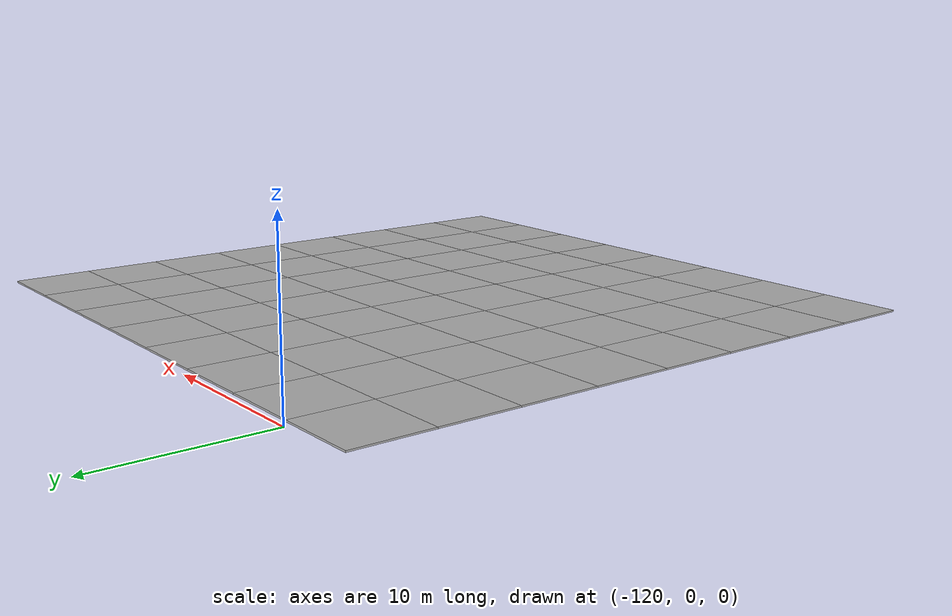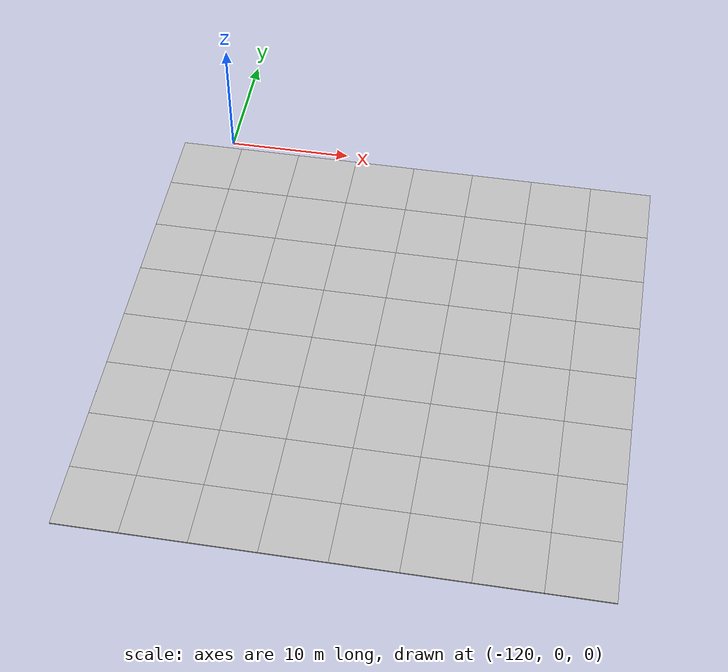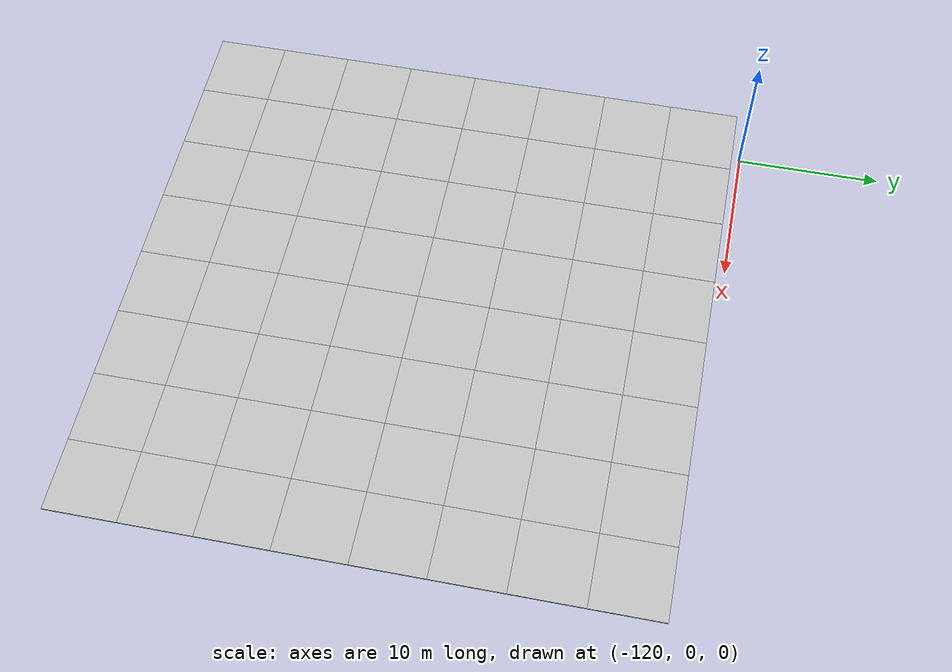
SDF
<sdf version="1.7">
 <world name="default">
  <model name="mud_plane_80x80_4">
   <model name="mud_plane_40x40">
    <model name="mud_plane_20x20">
     <model name="mud_plane">
      <static>1</static>
      <link name="link">
       <collision name="collision"><geometry><box><size>10 10 0.1</size></box></geometry></collision>
       <visual name="visual_1">
        <pose>-2.5 2.5 -0.05 0 -0 0</pose>
        <cast_shadows>0</cast_shadows>
        <geometry><box><size>5 5 0.1</size></box></geometry>
        <material>
         <script>
          <uri>model://mud_plane/materials/scripts</uri>
          <uri>model://mud_plane/materials/textures</uri>
          <name>vrc/mud</name>
         </script>
        </material>
       </visual>
       <visual name="visual_2">
        <pose>2.5 2.5 -0.05 0 -0 0</pose>
        <cast_shadows>0</cast_shadows>
        <geometry><box><size>5 5 0.1</size></box></geometry>
        <material>
         <script>
          <uri>model://mud_plane/materials/scripts</uri>
          <uri>model://mud_plane/materials/textures</uri>
          <name>vrc/mud</name>
         </script>
        </material>
       </visual>
       <visual name="visual_3">
        <pose>2.5 -2.5 -0.05 0 -0 0</pose>
        <cast_shadows>0</cast_shadows>
        <geometry><box><size>5 5 0.1</size></box></geometry>
        <material>
         <script>
          <uri>model://mud_plane/materials/scripts</uri>
          <uri>model://mud_plane/materials/textures</uri>
          <name>vrc/mud</name>
         </script>
        </material>
       </visual>
       <visual name="visual_4">
        <pose>-2.5 -2.5 -0.05 0 -0 0</pose>
        <cast_shadows>0</cast_shadows>
        <geometry><box><size>5 5 0.1</size></box></geometry>
        <material>
         <script>
          <uri>model://mud_plane/materials/scripts</uri>
          <uri>model://mud_plane/materials/textures</uri>
          <name>vrc/mud</name>
         </script>
        </material>
       </visual>
      </link>
      <pose>-4.99986 -4.99991 0 0 -0 0</pose>
     </model>
     <model name="mud_plane_0">
      <static>1</static>
      <link name="link">
       <collision name="collision"><geometry><box><size>10 10 0.1</size></box></geometry></collision>
       <visual name="visual_1">
        <pose>-2.5 2.5 -0.05 0 -0 0</pose>
        <cast_shadows>0</cast_shadows>
        <geometry><box><size>5 5 0.1</size></box></geometry>
        <material>
         <script>
          <uri>model://mud_plane/materials/scripts</uri>
          <uri>model://mud_plane/materials/textures</uri>
          <name>vrc/mud</name>
         </script>
        </material>
       </visual>
       <visual name="visual_2">
        <pose>2.5 2.5 -0.05 0 -0 0</pose>
        <cast_shadows>0</cast_shadows>
        <geometry><box><size>5 5 0.1</size></box></geometry>
        <material>
         <script>
          <uri>model://mud_plane/materials/scripts</uri>
          <uri>model://mud_plane/materials/textures</uri>
          <name>vrc/mud</name>
         </script>
        </material>
       </visual>
       <visual name="visual_3">
        <pose>2.5 -2.5 -0.05 0 -0 0</pose>
        <cast_shadows>0</cast_shadows>
        <geometry><box><size>5 5 0.1</size></box></geometry>
        <material>
         <script>
          <uri>model://mud_plane/materials/scripts</uri>
          <uri>model://mud_plane/materials/textures</uri>
          <name>vrc/mud</name>
         </script>
        </material>
       </visual>
       <visual name="visual_4">
        <pose>-2.5 -2.5 -0.05 0 -0 0</pose>
        <cast_shadows>0</cast_shadows>
        <geometry><box><size>5 5 0.1</size></box></geometry>
        <material>
         <script>
          <uri>model://mud_plane/materials/scripts</uri>
          <uri>model://mud_plane/materials/textures</uri>
          <name>vrc/mud</name>
         </script>
        </material>
       </visual>
      </link>
      <pose>-4.99946 4.99954 0 0 -0 0</pose>
     </model>
     <model name="mud_plane_1">
      <static>1</static>
      <link name="link">
       <collision name="collision"><geometry><box><size>10 10 0.1</size></box></geometry></collision>
       <visual name="visual_1">
        <pose>-2.5 2.5 -0.05 0 -0 0</pose>
        <cast_shadows>0</cast_shadows>
        <geometry><box><size>5 5 0.1</size></box></geometry>
        <material>
         <script>
          <uri>model://mud_plane/materials/scripts</uri>
          <uri>model://mud_plane/materials/textures</uri>
          <name>vrc/mud</name>
         </script>
        </material>
       </visual>
       <visual name="visual_2">
        <pose>2.5 2.5 -0.05 0 -0 0</pose>
        <cast_shadows>0</cast_shadows>
        <geometry><box><size>5 5 0.1</size></box></geometry>
        <material>
         <script>
          <uri>model://mud_plane/materials/scripts</uri>
          <uri>model://mud_plane/materials/textures</uri>
          <name>vrc/mud</name>
         </script>
        </material>
       </visual>
       <visual name="visual_3">
        <pose>2.5 -2.5 -0.05 0 -0 0</pose>
        <cast_shadows>0</cast_shadows>
        <geometry><box><size>5 5 0.1</size></box></geometry>
        <material>
         <script>
          <uri>model://mud_plane/materials/scripts</uri>
          <uri>model://mud_plane/materials/textures</uri>
          <name>vrc/mud</name>
         </script>
        </material>
       </visual>
       <visual name="visual_4">
        <pose>-2.5 -2.5 -0.05 0 -0 0</pose>
        <cast_shadows>0</cast_shadows>
        <geometry><box><size>5 5 0.1</size></box></geometry>
        <material>
         <script>
          <uri>model://mud_plane/materials/scripts</uri>
          <uri>model://mud_plane/materials/textures</uri>
          <name>vrc/mud</name>
         </script>
        </material>
       </visual>
      </link>
      <pose>4.99964 -4.99949 0 0 -0 0</pose>
     </model>
     <model name="mud_plane_2">
      <static>1</static>
      <link name="link">
       <collision name="collision"><geometry><box><size>10 10 0.1</size></box></geometry></collision>
       <visual name="visual_1">
        <pose>-2.5 2.5 -0.05 0 -0 0</pose>
        <cast_shadows>0</cast_shadows>
        <geometry><box><size>5 5 0.1</size></box></geometry>
        <material>
         <script>
          <uri>model://mud_plane/materials/scripts</uri>
          <uri>model://mud_plane/materials/textures</uri>
          <name>vrc/mud</name>
         </script>
        </material>
       </visual>
       <visual name="visual_2">
        <pose>2.5 2.5 -0.05 0 -0 0</pose>
        <cast_shadows>0</cast_shadows>
        <geometry><box><size>5 5 0.1</size></box></geometry>
        <material>
         <script>
          <uri>model://mud_plane/materials/scripts</uri>
          <uri>model://mud_plane/materials/textures</uri>
          <name>vrc/mud</name>
         </script>
        </material>
       </visual>
       <visual name="visual_3">
        <pose>2.5 -2.5 -0.05 0 -0 0</pose>
        <cast_shadows>0</cast_shadows>
        <geometry><box><size>5 5 0.1</size></box></geometry>
        <material>
         <script>
          <uri>model://mud_plane/materials/scripts</uri>
          <uri>model://mud_plane/materials/textures</uri>
          <name>vrc/mud</name>
         </script>
        </material>
       </visual>
       <visual name="visual_4">
        <pose>-2.5 -2.5 -0.05 0 -0 0</pose>
        <cast_shadows>0</cast_shadows>
        <geometry><box><size>5 5 0.1</size></box></geometry>
        <material>
         <script>
          <uri>model://mud_plane/materials/scripts</uri>
          <uri>model://mud_plane/materials/textures</uri>
          <name>vrc/mud</name>
         </script>
        </material>
       </visual>
      </link>
      <pose>4.99967 4.99986 0 0 -0 0</pose>
     </model>
     <static>0</static>
     <pose>-9.99895 9.99843 0 0 -0 0</pose>
    </model>
    <model name="mud_plane_20x20_0">
     <model name="mud_plane">
      <static>1</static>
      <link name="link">
       <collision name="collision"><geometry><box><size>10 10 0.1</size></box></geometry></collision>
       <visual name="visual_1">
        <pose>-2.5 2.5 -0.05 0 -0 0</pose>
        <cast_shadows>0</cast_shadows>
        <geometry><box><size>5 5 0.1</size></box></geometry>
        <material>
         <script>
          <uri>model://mud_plane/materials/scripts</uri>
          <uri>model://mud_plane/materials/textures</uri>
          <name>vrc/mud</name>
         </script>
        </material>
       </visual>
       <visual name="visual_2">
        <pose>2.5 2.5 -0.05 0 -0 0</pose>
        <cast_shadows>0</cast_shadows>
        <geometry><box><size>5 5 0.1</size></box></geometry>
        <material>
         <script>
          <uri>model://mud_plane/materials/scripts</uri>
          <uri>model://mud_plane/materials/textures</uri>
          <name>vrc/mud</name>
         </script>
        </material>
       </visual>
       <visual name="visual_3">
        <pose>2.5 -2.5 -0.05 0 -0 0</pose>
        <cast_shadows>0</cast_shadows>
        <geometry><box><size>5 5 0.1</size></box></geometry>
        <material>
         <script>
          <uri>model://mud_plane/materials/scripts</uri>
          <uri>model://mud_plane/materials/textures</uri>
          <name>vrc/mud</name>
         </script>
        </material>
       </visual>
       <visual name="visual_4">
        <pose>-2.5 -2.5 -0.05 0 -0 0</pose>
        <cast_shadows>0</cast_shadows>
        <geometry><box><size>5 5 0.1</size></box></geometry>
        <material>
         <script>
          <uri>model://mud_plane/materials/scripts</uri>
          <uri>model://mud_plane/materials/textures</uri>
          <name>vrc/mud</name>
         </script>
        </material>
       </visual>
      </link>
      <pose>-4.99986 -4.99991 0 0 -0 0</pose>
     </model>
     <model name="mud_plane_0">
      <static>1</static>
      <link name="link">
       <collision name="collision"><geometry><box><size>10 10 0.1</size></box></geometry></collision>
       <visual name="visual_1">
        <pose>-2.5 2.5 -0.05 0 -0 0</pose>
        <cast_shadows>0</cast_shadows>
        <geometry><box><size>5 5 0.1</size></box></geometry>
        <material>
         <script>
          <uri>model://mud_plane/materials/scripts</uri>
          <uri>model://mud_plane/materials/textures</uri>
          <name>vrc/mud</name>
         </script>
        </material>
       </visual>
       <visual name="visual_2">
        <pose>2.5 2.5 -0.05 0 -0 0</pose>
        <cast_shadows>0</cast_shadows>
        <geometry><box><size>5 5 0.1</size></box></geometry>
        <material>
         <script>
          <uri>model://mud_plane/materials/scripts</uri>
          <uri>model://mud_plane/materials/textures</uri>
          <name>vrc/mud</name>
         </script>
        </material>
       </visual>
       <visual name="visual_3">
        <pose>2.5 -2.5 -0.05 0 -0 0</pose>
        <cast_shadows>0</cast_shadows>
        <geometry><box><size>5 5 0.1</size></box></geometry>
        <material>
         <script>
          <uri>model://mud_plane/materials/scripts</uri>
          <uri>model://mud_plane/materials/textures</uri>
          <name>vrc/mud</name>
         </script>
        </material>
       </visual>
       <visual name="visual_4">
        <pose>-2.5 -2.5 -0.05 0 -0 0</pose>
        <cast_shadows>0</cast_shadows>
        <geometry><box><size>5 5 0.1</size></box></geometry>
        <material>
         <script>
          <uri>model://mud_plane/materials/scripts</uri>
          <uri>model://mud_plane/materials/textures</uri>
          <name>vrc/mud</name>
         </script>
        </material>
       </visual>
      </link>
      <pose>-4.99946 4.99954 0 0 -0 0</pose>
     </model>
     <model name="mud_plane_1">
      <static>1</static>
      <link name="link">
       <collision name="collision"><geometry><box><size>10 10 0.1</size></box></geometry></collision>
       <visual name="visual_1">
        <pose>-2.5 2.5 -0.05 0 -0 0</pose>
        <cast_shadows>0</cast_shadows>
        <geometry><box><size>5 5 0.1</size></box></geometry>
        <material>
         <script>
          <uri>model://mud_plane/materials/scripts</uri>
          <uri>model://mud_plane/materials/textures</uri>
          <name>vrc/mud</name>
         </script>
        </material>
       </visual>
       <visual name="visual_2">
        <pose>2.5 2.5 -0.05 0 -0 0</pose>
        <cast_shadows>0</cast_shadows>
        <geometry><box><size>5 5 0.1</size></box></geometry>
        <material>
         <script>
          <uri>model://mud_plane/materials/scripts</uri>
          <uri>model://mud_plane/materials/textures</uri>
          <name>vrc/mud</name>
         </script>
        </material>
       </visual>
       <visual name="visual_3">
        <pose>2.5 -2.5 -0.05 0 -0 0</pose>
        <cast_shadows>0</cast_shadows>
        <geometry><box><size>5 5 0.1</size></box></geometry>
        <material>
         <script>
          <uri>model://mud_plane/materials/scripts</uri>
          <uri>model://mud_plane/materials/textures</uri>
          <name>vrc/mud</name>
         </script>
        </material>
       </visual>
       <visual name="visual_4">
        <pose>-2.5 -2.5 -0.05 0 -0 0</pose>
        <cast_shadows>0</cast_shadows>
        <geometry><box><size>5 5 0.1</size></box></geometry>
        <material>
         <script>
          <uri>model://mud_plane/materials/scripts</uri>
          <uri>model://mud_plane/materials/textures</uri>
          <name>vrc/mud</name>
         </script>
        </material>
       </visual>
      </link>
      <pose>4.99964 -4.99949 0 0 -0 0</pose>
     </model>
     <model name="mud_plane_2">
      <static>1</static>
      <link name="link">
       <collision name="collision"><geometry><box><size>10 10 0.1</size></box></geometry></collision>
       <visual name="visual_1">
        <pose>-2.5 2.5 -0.05 0 -0 0</pose>
        <cast_shadows>0</cast_shadows>
        <geometry><box><size>5 5 0.1</size></box></geometry>
        <material>
         <script>
          <uri>model://mud_plane/materials/scripts</uri>
          <uri>model://mud_plane/materials/textures</uri>
          <name>vrc/mud</name>
         </script>
        </material>
       </visual>
       <visual name="visual_2">
        <pose>2.5 2.5 -0.05 0 -0 0</pose>
        <cast_shadows>0</cast_shadows>
        <geometry><box><size>5 5 0.1</size></box></geometry>
        <material>
         <script>
          <uri>model://mud_plane/materials/scripts</uri>
          <uri>model://mud_plane/materials/textures</uri>
          <name>vrc/mud</name>
         </script>
        </material>
       </visual>
       <visual name="visual_3">
        <pose>2.5 -2.5 -0.05 0 -0 0</pose>
        <cast_shadows>0</cast_shadows>
        <geometry><box><size>5 5 0.1</size></box></geometry>
        <material>
         <script>
          <uri>model://mud_plane/materials/scripts</uri>
          <uri>model://mud_plane/materials/textures</uri>
          <name>vrc/mud</name>
         </script>
        </material>
       </visual>
       <visual name="visual_4">
        <pose>-2.5 -2.5 -0.05 0 -0 0</pose>
        <cast_shadows>0</cast_shadows>
        <geometry><box><size>5 5 0.1</size></box></geometry>
        <material>
         <script>
          <uri>model://mud_plane/materials/scripts</uri>
          <uri>model://mud_plane/materials/textures</uri>
          <name>vrc/mud</name>
         </script>
        </material>
       </visual>
      </link>
      <pose>4.99967 4.99986 0 0 -0 0</pose>
     </model>
     <static>0</static>
     <pose>9.99933 9.9997 0 0 -0 0</pose>
    </model>
    <model name="mud_plane_20x20_1">
     <model name="mud_plane">
      <static>1</static>
      <link name="link">
       <collision name="collision"><geometry><box><size>10 10 0.1</size></box></geometry></collision>
       <visual name="visual_1">
        <pose>-2.5 2.5 -0.05 0 -0 0</pose>
        <cast_shadows>0</cast_shadows>
        <geometry><box><size>5 5 0.1</size></box></geometry>
        <material>
         <script>
          <uri>model://mud_plane/materials/scripts</uri>
          <uri>model://mud_plane/materials/textures</uri>
          <name>vrc/mud</name>
         </script>
        </material>
       </visual>
       <visual name="visual_2">
        <pose>2.5 2.5 -0.05 0 -0 0</pose>
        <cast_shadows>0</cast_shadows>
        <geometry><box><size>5 5 0.1</size></box></geometry>
        <material>
         <script>
          <uri>model://mud_plane/materials/scripts</uri>
          <uri>model://mud_plane/materials/textures</uri>
          <name>vrc/mud</name>
         </script>
        </material>
       </visual>
       <visual name="visual_3">
        <pose>2.5 -2.5 -0.05 0 -0 0</pose>
        <cast_shadows>0</cast_shadows>
        <geometry><box><size>5 5 0.1</size></box></geometry>
        <material>
         <script>
          <uri>model://mud_plane/materials/scripts</uri>
          <uri>model://mud_plane/materials/textures</uri>
          <name>vrc/mud</name>
         </script>
        </material>
       </visual>
       <visual name="visual_4">
        <pose>-2.5 -2.5 -0.05 0 -0 0</pose>
        <cast_shadows>0</cast_shadows>
        <geometry><box><size>5 5 0.1</size></box></geometry>
        <material>
         <script>
          <uri>model://mud_plane/materials/scripts</uri>
          <uri>model://mud_plane/materials/textures</uri>
          <name>vrc/mud</name>
         </script>
        </material>
       </visual>
      </link>
      <pose>-4.99986 -4.99991 0 0 -0 0</pose>
     </model>
     <model name="mud_plane_0">
      <static>1</static>
      <link name="link">
       <collision name="collision"><geometry><box><size>10 10 0.1</size></box></geometry></collision>
       <visual name="visual_1">
        <pose>-2.5 2.5 -0.05 0 -0 0</pose>
        <cast_shadows>0</cast_shadows>
        <geometry><box><size>5 5 0.1</size></box></geometry>
        <material>
         <script>
          <uri>model://mud_plane/materials/scripts</uri>
          <uri>model://mud_plane/materials/textures</uri>
          <name>vrc/mud</name>
         </script>
        </material>
       </visual>
       <visual name="visual_2">
        <pose>2.5 2.5 -0.05 0 -0 0</pose>
        <cast_shadows>0</cast_shadows>
        <geometry><box><size>5 5 0.1</size></box></geometry>
        <material>
         <script>
          <uri>model://mud_plane/materials/scripts</uri>
          <uri>model://mud_plane/materials/textures</uri>
          <name>vrc/mud</name>
         </script>
        </material>
       </visual>
       <visual name="visual_3">
        <pose>2.5 -2.5 -0.05 0 -0 0</pose>
        <cast_shadows>0</cast_shadows>
        <geometry><box><size>5 5 0.1</size></box></geometry>
        <material>
         <script>
          <uri>model://mud_plane/materials/scripts</uri>
          <uri>model://mud_plane/materials/textures</uri>
          <name>vrc/mud</name>
         </script>
        </material>
       </visual>
       <visual name="visual_4">
        <pose>-2.5 -2.5 -0.05 0 -0 0</pose>
        <cast_shadows>0</cast_shadows>
        <geometry><box><size>5 5 0.1</size></box></geometry>
        <material>
         <script>
          <uri>model://mud_plane/materials/scripts</uri>
          <uri>model://mud_plane/materials/textures</uri>
          <name>vrc/mud</name>
         </script>
        </material>
       </visual>
      </link>
      <pose>-4.99946 4.99954 0 0 -0 0</pose>
     </model>
     <model name="mud_plane_1">
      <static>1</static>
      <link name="link">
       <collision name="collision"><geometry><box><size>10 10 0.1</size></box></geometry></collision>
       <visual name="visual_1">
        <pose>-2.5 2.5 -0.05 0 -0 0</pose>
        <cast_shadows>0</cast_shadows>
        <geometry><box><size>5 5 0.1</size></box></geometry>
        <material>
         <script>
          <uri>model://mud_plane/materials/scripts</uri>
          <uri>model://mud_plane/materials/textures</uri>
          <name>vrc/mud</name>
         </script>
        </material>
       </visual>
       <visual name="visual_2">
        <pose>2.5 2.5 -0.05 0 -0 0</pose>
        <cast_shadows>0</cast_shadows>
        <geometry><box><size>5 5 0.1</size></box></geometry>
        <material>
         <script>
          <uri>model://mud_plane/materials/scripts</uri>
          <uri>model://mud_plane/materials/textures</uri>
          <name>vrc/mud</name>
         </script>
        </material>
       </visual>
       <visual name="visual_3">
        <pose>2.5 -2.5 -0.05 0 -0 0</pose>
        <cast_shadows>0</cast_shadows>
        <geometry><box><size>5 5 0.1</size></box></geometry>
        <material>
         <script>
          <uri>model://mud_plane/materials/scripts</uri>
          <uri>model://mud_plane/materials/textures</uri>
          <name>vrc/mud</name>
         </script>
        </material>
       </visual>
       <visual name="visual_4">
        <pose>-2.5 -2.5 -0.05 0 -0 0</pose>
        <cast_shadows>0</cast_shadows>
        <geometry><box><size>5 5 0.1</size></box></geometry>
        <material>
         <script>
          <uri>model://mud_plane/materials/scripts</uri>
          <uri>model://mud_plane/materials/textures</uri>
          <name>vrc/mud</name>
         </script>
        </material>
       </visual>
      </link>
      <pose>4.99964 -4.99949 0 0 -0 0</pose>
     </model>
     <model name="mud_plane_2">
      <static>1</static>
      <link name="link">
       <collision name="collision"><geometry><box><size>10 10 0.1</size></box></geometry></collision>
       <visual name="visual_1">
        <pose>-2.5 2.5 -0.05 0 -0 0</pose>
        <cast_shadows>0</cast_shadows>
        <geometry><box><size>5 5 0.1</size></box></geometry>
        <material>
         <script>
          <uri>model://mud_plane/materials/scripts</uri>
          <uri>model://mud_plane/materials/textures</uri>
          <name>vrc/mud</name>
         </script>
        </material>
       </visual>
       <visual name="visual_2">
        <pose>2.5 2.5 -0.05 0 -0 0</pose>
        <cast_shadows>0</cast_shadows>
        <geometry><box><size>5 5 0.1</size></box></geometry>
        <material>
         <script>
          <uri>model://mud_plane/materials/scripts</uri>
          <uri>model://mud_plane/materials/textures</uri>
          <name>vrc/mud</name>
         </script>
        </material>
       </visual>
       <visual name="visual_3">
        <pose>2.5 -2.5 -0.05 0 -0 0</pose>
        <cast_shadows>0</cast_shadows>
        <geometry><box><size>5 5 0.1</size></box></geometry>
        <material>
         <script>
          <uri>model://mud_plane/materials/scripts</uri>
          <uri>model://mud_plane/materials/textures</uri>
          <name>vrc/mud</name>
         </script>
        </material>
       </visual>
       <visual name="visual_4">
        <pose>-2.5 -2.5 -0.05 0 -0 0</pose>
        <cast_shadows>0</cast_shadows>
        <geometry><box><size>5 5 0.1</size></box></geometry>
        <material>
         <script>
          <uri>model://mud_plane/materials/scripts</uri>
          <uri>model://mud_plane/materials/textures</uri>
          <name>vrc/mud</name>
         </script>
        </material>
       </visual>
      </link>
      <pose>4.99967 4.99986 0 0 -0 0</pose>
     </model>
     <static>0</static>
     <pose>9.9993 -9.99877 0 0 -0 0</pose>
    </model>
    <model name="mud_plane_20x20_2">
     <model name="mud_plane">
      <static>1</static>
      <link name="link">
       <collision name="collision"><geometry><box><size>10 10 0.1</size></box></geometry></collision>
       <visual name="visual_1">
        <pose>-2.5 2.5 -0.05 0 -0 0</pose>
        <cast_shadows>0</cast_shadows>
        <geometry><box><size>5 5 0.1</size></box></geometry>
        <material>
         <script>
          <uri>model://mud_plane/materials/scripts</uri>
          <uri>model://mud_plane/materials/textures</uri>
          <name>vrc/mud</name>
         </script>
        </material>
       </visual>
       <visual name="visual_2">
        <pose>2.5 2.5 -0.05 0 -0 0</pose>
        <cast_shadows>0</cast_shadows>
        <geometry><box><size>5 5 0.1</size></box></geometry>
        <material>
         <script>
          <uri>model://mud_plane/materials/scripts</uri>
          <uri>model://mud_plane/materials/textures</uri>
          <name>vrc/mud</name>
         </script>
        </material>
       </visual>
       <visual name="visual_3">
        <pose>2.5 -2.5 -0.05 0 -0 0</pose>
        <cast_shadows>0</cast_shadows>
        <geometry><box><size>5 5 0.1</size></box></geometry>
        <material>
         <script>
          <uri>model://mud_plane/materials/scripts</uri>
          <uri>model://mud_plane/materials/textures</uri>
          <name>vrc/mud</name>
         </script>
        </material>
       </visual>
       <visual name="visual_4">
        <pose>-2.5 -2.5 -0.05 0 -0 0</pose>
        <cast_shadows>0</cast_shadows>
        <geometry><box><size>5 5 0.1</size></box></geometry>
        <material>
         <script>
          <uri>model://mud_plane/materials/scripts</uri>
          <uri>model://mud_plane/materials/textures</uri>
          <name>vrc/mud</name>
         </script>
        </material>
       </visual>
      </link>
      <pose>-4.99986 -4.99991 0 0 -0 0</pose>
     </model>
     <model name="mud_plane_0">
      <static>1</static>
      <link name="link">
       <collision name="collision"><geometry><box><size>10 10 0.1</size></box></geometry></collision>
       <visual name="visual_1">
        <pose>-2.5 2.5 -0.05 0 -0 0</pose>
        <cast_shadows>0</cast_shadows>
        <geometry><box><size>5 5 0.1</size></box></geometry>
        <material>
         <script>
          <uri>model://mud_plane/materials/scripts</uri>
          <uri>model://mud_plane/materials/textures</uri>
          <name>vrc/mud</name>
         </script>
        </material>
       </visual>
       <visual name="visual_2">
        <pose>2.5 2.5 -0.05 0 -0 0</pose>
        <cast_shadows>0</cast_shadows>
        <geometry><box><size>5 5 0.1</size></box></geometry>
        <material>
         <script>
          <uri>model://mud_plane/materials/scripts</uri>
          <uri>model://mud_plane/materials/textures</uri>
          <name>vrc/mud</name>
         </script>
        </material>
       </visual>
       <visual name="visual_3">
        <pose>2.5 -2.5 -0.05 0 -0 0</pose>
        <cast_shadows>0</cast_shadows>
        <geometry><box><size>5 5 0.1</size></box></geometry>
        <material>
         <script>
          <uri>model://mud_plane/materials/scripts</uri>
          <uri>model://mud_plane/materials/textures</uri>
          <name>vrc/mud</name>
         </script>
        </material>
       </visual>
       <visual name="visual_4">
        <pose>-2.5 -2.5 -0.05 0 -0 0</pose>
        <cast_shadows>0</cast_shadows>
        <geometry><box><size>5 5 0.1</size></box></geometry>
        <material>
         <script>
          <uri>model://mud_plane/materials/scripts</uri>
          <uri>model://mud_plane/materials/textures</uri>
          <name>vrc/mud</name>
         </script>
        </material>
       </visual>
      </link>
      <pose>-4.99946 4.99954 0 0 -0 0</pose>
     </model>
     <model name="mud_plane_1">
      <static>1</static>
      <link name="link">
       <collision name="collision"><geometry><box><size>10 10 0.1</size></box></geometry></collision>
       <visual name="visual_1">
        <pose>-2.5 2.5 -0.05 0 -0 0</pose>
        <cast_shadows>0</cast_shadows>
        <geometry><box><size>5 5 0.1</size></box></geometry>
        <material>
         <script>
          <uri>model://mud_plane/materials/scripts</uri>
          <uri>model://mud_plane/materials/textures</uri>
          <name>vrc/mud</name>
         </script>
        </material>
       </visual>
       <visual name="visual_2">
        <pose>2.5 2.5 -0.05 0 -0 0</pose>
        <cast_shadows>0</cast_shadows>
        <geometry><box><size>5 5 0.1</size></box></geometry>
        <material>
         <script>
          <uri>model://mud_plane/materials/scripts</uri>
          <uri>model://mud_plane/materials/textures</uri>
          <name>vrc/mud</name>
         </script>
        </material>
       </visual>
       <visual name="visual_3">
        <pose>2.5 -2.5 -0.05 0 -0 0</pose>
        <cast_shadows>0</cast_shadows>
        <geometry><box><size>5 5 0.1</size></box></geometry>
        <material>
         <script>
          <uri>model://mud_plane/materials/scripts</uri>
          <uri>model://mud_plane/materials/textures</uri>
          <name>vrc/mud</name>
         </script>
        </material>
       </visual>
       <visual name="visual_4">
        <pose>-2.5 -2.5 -0.05 0 -0 0</pose>
        <cast_shadows>0</cast_shadows>
        <geometry><box><size>5 5 0.1</size></box></geometry>
        <material>
         <script>
          <uri>model://mud_plane/materials/scripts</uri>
          <uri>model://mud_plane/materials/textures</uri>
          <name>vrc/mud</name>
         </script>
        </material>
       </visual>
      </link>
      <pose>4.99964 -4.99949 0 0 -0 0</pose>
     </model>
     <model name="mud_plane_2">
      <static>1</static>
      <link name="link">
       <collision name="collision"><geometry><box><size>10 10 0.1</size></box></geometry></collision>
       <visual name="visual_1">
        <pose>-2.5 2.5 -0.05 0 -0 0</pose>
        <cast_shadows>0</cast_shadows>
        <geometry><box><size>5 5 0.1</size></box></geometry>
        <material>
         <script>
          <uri>model://mud_plane/materials/scripts</uri>
          <uri>model://mud_plane/materials/textures</uri>
          <name>vrc/mud</name>
         </script>
        </material>
       </visual>
       <visual name="visual_2">
        <pose>2.5 2.5 -0.05 0 -0 0</pose>
        <cast_shadows>0</cast_shadows>
        <geometry><box><size>5 5 0.1</size></box></geometry>
        <material>
         <script>
          <uri>model://mud_plane/materials/scripts</uri>
          <uri>model://mud_plane/materials/textures</uri>
          <name>vrc/mud</name>
         </script>
        </material>
       </visual>
       <visual name="visual_3">
        <pose>2.5 -2.5 -0.05 0 -0 0</pose>
        <cast_shadows>0</cast_shadows>
        <geometry><box><size>5 5 0.1</size></box></geometry>
        <material>
         <script>
          <uri>model://mud_plane/materials/scripts</uri>
          <uri>model://mud_plane/materials/textures</uri>
          <name>vrc/mud</name>
         </script>
        </material>
       </visual>
       <visual name="visual_4">
        <pose>-2.5 -2.5 -0.05 0 -0 0</pose>
        <cast_shadows>0</cast_shadows>
        <geometry><box><size>5 5 0.1</size></box></geometry>
        <material>
         <script>
          <uri>model://mud_plane/materials/scripts</uri>
          <uri>model://mud_plane/materials/textures</uri>
          <name>vrc/mud</name>
         </script>
        </material>
       </visual>
      </link>
      <pose>4.99967 4.99986 0 0 -0 0</pose>
     </model>
     <static>0</static>
     <pose>-9.99969 -9.99935 0 0 -0 0</pose>
    </model>
    <static>0</static>
    <pose>19.9986 19.9995 0 0 -0 0</pose>
   </model>
   <static>0</static>
   <pose>-124.144 -40.594 0 0 -0 0</pose>
  </model>
 </world>
</sdf>
